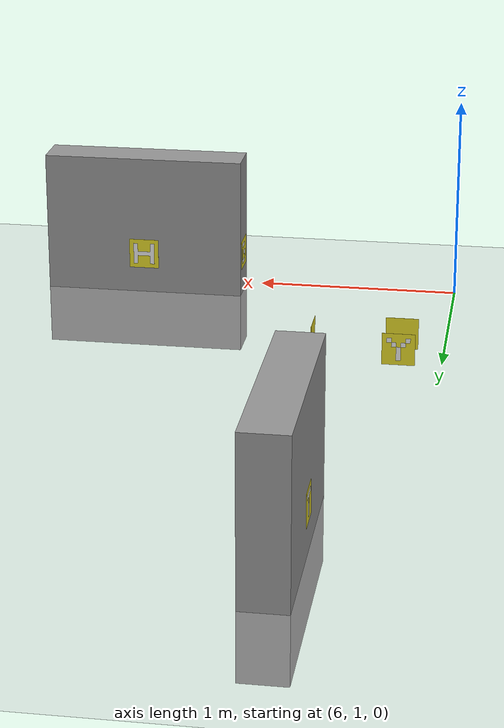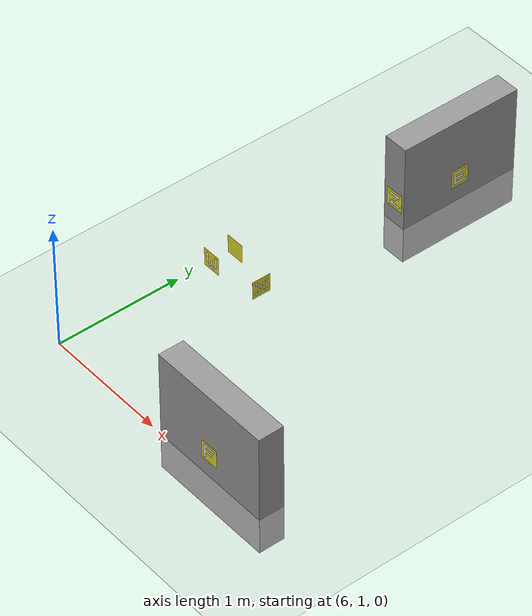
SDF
<sdf version="1.6">
 <world name="default">
  <model name="ground_plane">
   <static>1</static>
   <link name="link">
    <collision name="collision">
     <geometry><plane><normal>0 0 1</normal><size>100 100</size></plane></geometry>
     <surface><friction><ode><mu>100</mu><mu2>50</mu2></ode></friction></surface>
    </collision>
    <visual name="visual">
     <cast_shadows>0</cast_shadows>
     <geometry><plane><normal>0 0 1</normal><size>100 100</size></plane></geometry>
     <material>
      <script><uri>file://media/materials/scripts/gazebo.material</uri><name>Gazebo/Gray</name></script>
     </material>
    </visual>
   </link>
  </model>
  <model name="Untitled1_clone">
   <pose>6.48 3.98 0 0 -0 0</pose>
   <link name="Wall_0">
    <collision name="Wall_0_Collision">
     <geometry><box><size>1 0.2 1</size></box></geometry>
     <pose>0 0 0.2 0 -0 0</pose>
    </collision>
    <visual name="Wall_0_Visual">
     <pose>0 0 0.2 0 -0 0</pose>
     <geometry><box><size>1 0.2 1</size></box></geometry>
     <material>
      <script><uri>file://media/materials/scripts/gazebo.material</uri><name>Gazebo/Gray</name></script>
      <ambient>1 1 1 1</ambient>
     </material>
     <meta><layer>0</layer></meta>
    </visual>
    <pose>0 0 0 0 -0 1.5708</pose>
   </link>
   <static>1</static>
  </model>
  <model name="Untitled1_clone_0_clone">
   <pose>7.58 1.1 0 0 0 -1.5708</pose>
   <link name="Wall_0">
    <collision name="Wall_0_Collision">
     <geometry><box><size>1 0.2 1</size></box></geometry>
     <pose>0 0 0.2 0 -0 0</pose>
    </collision>
    <visual name="Wall_0_Visual">
     <pose>0 0 0.2 0 -0 0</pose>
     <geometry><box><size>1 0.2 1</size></box></geometry>
     <material>
      <script><uri>file://media/materials/scripts/gazebo.material</uri><name>Gazebo/Gray</name></script>
      <ambient>1 1 1 1</ambient>
     </material>
     <meta><layer>0</layer></meta>
    </visual>
    <pose>0 0 0 0 -0 1.5708</pose>
   </link>
   <static>1</static>
  </model>
  <model name="labal_F">
   <link name="base">
    <inertial>
     <pose>-0.001086 -0.000137 -0.001593 0 -0 0</pose>
     <mass>0.0137688</mass>
     <inertia>
      <ixx>2.44128e-05</ixx>
      <ixy>-9.16282e-09</ixy>
      <ixz>4.39336e-07</ixz>
      <iyy>2.60674e-05</iyy>
      <iyz>-1.55543e-08</iyz>
      <izz>4.38445e-05</izz>
     </inertia>
    </inertial>
    <collision name="base_collision">
     <geometry>
      <mesh><scale>1 1 1</scale><uri>/home/tdt/catkin_ws/src/RoboRTS/small_car/meshes/base.STL</uri></mesh>
     </geometry>
    </collision>
    <collision name="base_fixed_joint_lump__labal_F_collision_1">
     <pose>0 0 0 1.5708 -0 0</pose>
     <geometry>
      <mesh><scale>1 1 1</scale><uri>/home/tdt/catkin_ws/src/RoboRTS/small_car/meshes/labal_F.STL</uri></mesh>
     </geometry>
    </collision>
    <visual name="base_visual">
     <geometry>
      <mesh><scale>1 1 1</scale><uri>/home/tdt/catkin_ws/src/RoboRTS/small_car/meshes/base.STL</uri></mesh>
     </geometry>
     <material>
      <script><name>Gazebo/Yellow</name><uri>file://media/materials/scripts/gazebo.material</uri></script>
     </material>
    </visual>
    <visual name="base_fixed_joint_lump__labal_F_visual_1">
     <pose>0 0 0 1.5708 -0 0</pose>
     <geometry>
      <mesh><scale>1 1 1</scale><uri>/home/tdt/catkin_ws/src/RoboRTS/small_car/meshes/labal_F.STL</uri></mesh>
     </geometry>
     <material>
      <script><name>Gazebo/White</name><uri>file://media/materials/scripts/gazebo.material</uri></script>
     </material>
    </visual>
   </link>
   <pose>7.58 1 0.2 0 -0 0</pose>
   <static>1</static>
  </model>
  <model name="labal_G">
   <link name="base">
    <inertial>
     <pose>-0.001086 -0.000137 -0.001593 0 -0 0</pose>
     <mass>0.0137688</mass>
     <inertia>
      <ixx>2.44128e-05</ixx>
      <ixy>-9.16282e-09</ixy>
      <ixz>4.39336e-07</ixz>
      <iyy>2.60674e-05</iyy>
      <iyz>-1.55543e-08</iyz>
      <izz>4.38445e-05</izz>
     </inertia>
    </inertial>
    <collision name="base_collision">
     <geometry>
      <mesh><scale>1 1 1</scale><uri>/home/tdt/catkin_ws/src/RoboRTS/small_car/meshes/base.STL</uri></mesh>
     </geometry>
    </collision>
    <collision name="base_fixed_joint_lump__labal_G_collision_1">
     <pose>0 0 0 1.5708 -0 0</pose>
     <geometry>
      <mesh><scale>1 1 1</scale><uri>/home/tdt/catkin_ws/src/RoboRTS/small_car/meshes/labal_G.STL</uri></mesh>
     </geometry>
    </collision>
    <visual name="base_visual">
     <geometry>
      <mesh><scale>1 1 1</scale><uri>/home/tdt/catkin_ws/src/RoboRTS/small_car/meshes/base.STL</uri></mesh>
     </geometry>
     <material>
      <script><name>Gazebo/Yellow</name><uri>file://media/materials/scripts/gazebo.material</uri></script>
     </material>
    </visual>
    <visual name="base_fixed_joint_lump__labal_G_visual_1">
     <pose>0 0 0 1.5708 -0 0</pose>
     <geometry>
      <mesh><scale>1 1 1</scale><uri>/home/tdt/catkin_ws/src/RoboRTS/small_car/meshes/labal_G.STL</uri></mesh>
     </geometry>
     <material>
      <script><name>Gazebo/White</name><uri>file://media/materials/scripts/gazebo.material</uri></script>
     </material>
    </visual>
   </link>
   <pose>7.08 1.1 0.2 0 0 -1.57</pose>
   <static>1</static>
  </model>
  <model name="labal_H">
   <link name="base">
    <inertial>
     <pose>-0.001086 -0.000137 -0.001593 0 -0 0</pose>
     <mass>0.0137688</mass>
     <inertia>
      <ixx>2.44128e-05</ixx>
      <ixy>-9.16282e-09</ixy>
      <ixz>4.39336e-07</ixz>
      <iyy>2.60674e-05</iyy>
      <iyz>-1.55543e-08</iyz>
      <izz>4.38445e-05</izz>
     </inertia>
    </inertial>
    <collision name="base_collision">
     <geometry>
      <mesh><scale>1 1 1</scale><uri>/home/tdt/catkin_ws/src/RoboRTS/small_car/meshes/base.STL</uri></mesh>
     </geometry>
    </collision>
    <collision name="base_fixed_joint_lump__labal_H_collision_1">
     <pose>0 0 0 1.5708 -0 0</pose>
     <geometry>
      <mesh><scale>1 1 1</scale><uri>/home/tdt/catkin_ws/src/RoboRTS/small_car/meshes/labal_H.STL</uri></mesh>
     </geometry>
    </collision>
    <visual name="base_visual">
     <geometry>
      <mesh><scale>1 1 1</scale><uri>/home/tdt/catkin_ws/src/RoboRTS/small_car/meshes/base.STL</uri></mesh>
     </geometry>
     <material>
      <script><name>Gazebo/Yellow</name><uri>file://media/materials/scripts/gazebo.material</uri></script>
     </material>
    </visual>
    <visual name="base_fixed_joint_lump__labal_H_visual_1">
     <pose>0 0 0 1.5708 -0 0</pose>
     <geometry>
      <mesh><scale>1 1 1</scale><uri>/home/tdt/catkin_ws/src/RoboRTS/small_car/meshes/labal_H.STL</uri></mesh>
     </geometry>
     <material>
      <script><name>Gazebo/White</name><uri>file://media/materials/scripts/gazebo.material</uri></script>
     </material>
    </visual>
   </link>
   <pose>7.58 1.2 0.2 0 -0 3.14</pose>
   <static>1</static>
  </model>
  <model name="labal_W">
   <link name="base">
    <inertial>
     <pose>-0.001086 -0.000137 -0.001593 0 -0 0</pose>
     <mass>0.0137688</mass>
     <inertia>
      <ixx>2.44128e-05</ixx>
      <ixy>-9.16282e-09</ixy>
      <ixz>4.39336e-07</ixz>
      <iyy>2.60674e-05</iyy>
      <iyz>-1.55543e-08</iyz>
      <izz>4.38445e-05</izz>
     </inertia>
    </inertial>
    <collision name="base_collision">
     <geometry>
      <mesh><scale>1 1 1</scale><uri>/home/tdt/catkin_ws/src/RoboRTS/small_car/meshes/base.STL</uri></mesh>
     </geometry>
    </collision>
    <collision name="base_fixed_joint_lump__labal_W_collision_1">
     <pose>0 0 0 1.5708 -0 0</pose>
     <geometry>
      <mesh><scale>1 1 1</scale><uri>/home/tdt/catkin_ws/src/RoboRTS/small_car/meshes/labal_W.STL</uri></mesh>
     </geometry>
    </collision>
    <visual name="base_visual">
     <geometry>
      <mesh><scale>1 1 1</scale><uri>/home/tdt/catkin_ws/src/RoboRTS/small_car/meshes/base.STL</uri></mesh>
     </geometry>
     <material>
      <script><name>Gazebo/Yellow</name><uri>file://media/materials/scripts/gazebo.material</uri></script>
     </material>
    </visual>
    <visual name="base_fixed_joint_lump__labal_W_visual_1">
     <pose>0 0 0 1.5708 -0 0</pose>
     <geometry>
      <mesh><scale>1 1 1</scale><uri>/home/tdt/catkin_ws/src/RoboRTS/small_car/meshes/labal_W.STL</uri></mesh>
     </geometry>
     <material>
      <script><name>Gazebo/White</name><uri>file://media/materials/scripts/gazebo.material</uri></script>
     </material>
    </visual>
   </link>
   <pose>6.18 2.14 0.2 0 -0 0</pose>
   <static>1</static>
  </model>
  <model name="labal_X">
   <link name="base">
    <inertial>
     <pose>-0.001086 -0.000137 -0.001593 0 -0 0</pose>
     <mass>0.0137688</mass>
     <inertia>
      <ixx>2.44128e-05</ixx>
      <ixy>-9.16282e-09</ixy>
      <ixz>4.39336e-07</ixz>
      <iyy>2.60674e-05</iyy>
      <iyz>-1.55543e-08</iyz>
      <izz>4.38445e-05</izz>
     </inertia>
    </inertial>
    <collision name="base_collision">
     <geometry>
      <mesh><scale>1 1 1</scale><uri>/home/tdt/catkin_ws/src/RoboRTS/small_car/meshes/base.STL</uri></mesh>
     </geometry>
    </collision>
    <collision name="base_fixed_joint_lump__labal_X_collision_1">
     <pose>0 0 0 1.5708 -0 0</pose>
     <geometry>
      <mesh><scale>1 1 1</scale><uri>/home/tdt/catkin_ws/src/RoboRTS/small_car/meshes/labal_X.STL</uri></mesh>
     </geometry>
    </collision>
    <visual name="base_visual">
     <geometry>
      <mesh><scale>1 1 1</scale><uri>/home/tdt/catkin_ws/src/RoboRTS/small_car/meshes/base.STL</uri></mesh>
     </geometry>
     <material>
      <script><name>Gazebo/Yellow</name><uri>file://media/materials/scripts/gazebo.material</uri></script>
     </material>
    </visual>
    <visual name="base_fixed_joint_lump__labal_X_visual_1">
     <pose>0 0 0 1.5708 -0 0</pose>
     <geometry>
      <mesh><scale>1 1 1</scale><uri>/home/tdt/catkin_ws/src/RoboRTS/small_car/meshes/labal_X.STL</uri></mesh>
     </geometry>
     <material>
      <script><name>Gazebo/White</name><uri>file://media/materials/scripts/gazebo.material</uri></script>
     </material>
    </visual>
   </link>
   <pose>6.58 2.24 0.2 0 -0 1.57</pose>
   <static>1</static>
  </model>
  <model name="labal_Y">
   <link name="base">
    <inertial>
     <pose>-0.001086 -0.000137 -0.001593 0 -0 0</pose>
     <mass>0.0137688</mass>
     <inertia>
      <ixx>2.44128e-05</ixx>
      <ixy>-9.16282e-09</ixy>
      <ixz>4.39336e-07</ixz>
      <iyy>2.60674e-05</iyy>
      <iyz>-1.55543e-08</iyz>
      <izz>4.38445e-05</izz>
     </inertia>
    </inertial>
    <collision name="base_collision">
     <geometry>
      <mesh><scale>1 1 1</scale><uri>/home/tdt/catkin_ws/src/RoboRTS/small_car/meshes/base.STL</uri></mesh>
     </geometry>
    </collision>
    <collision name="base_fixed_joint_lump__labal_Y_collision_1">
     <pose>0 0 0 1.5708 -0 0</pose>
     <geometry>
      <mesh><scale>1 1 1</scale><uri>/home/tdt/catkin_ws/src/RoboRTS/small_car/meshes/labal_Y.STL</uri></mesh>
     </geometry>
    </collision>
    <visual name="base_visual">
     <geometry>
      <mesh><scale>1 1 1</scale><uri>/home/tdt/catkin_ws/src/RoboRTS/small_car/meshes/base.STL</uri></mesh>
     </geometry>
     <material>
      <script><name>Gazebo/Yellow</name><uri>file://media/materials/scripts/gazebo.material</uri></script>
     </material>
    </visual>
    <visual name="base_fixed_joint_lump__labal_Y_visual_1">
     <pose>0 0 0 1.5708 -0 0</pose>
     <geometry>
      <mesh><scale>1 1 1</scale><uri>/home/tdt/catkin_ws/src/RoboRTS/small_car/meshes/labal_Y.STL</uri></mesh>
     </geometry>
     <material>
      <script><name>Gazebo/White</name><uri>file://media/materials/scripts/gazebo.material</uri></script>
     </material>
    </visual>
   </link>
   <pose>6.18 2.34 0.2 0 -0 3.14</pose>
   <static>1</static>
  </model>
  <model name="labal_T">
   <link name="base">
    <inertial>
     <pose>-0.001086 -0.000137 -0.001593 0 -0 0</pose>
     <mass>0.0137688</mass>
     <inertia>
      <ixx>2.44128e-05</ixx>
      <ixy>-9.16282e-09</ixy>
      <ixz>4.39336e-07</ixz>
      <iyy>2.60674e-05</iyy>
      <iyz>-1.55543e-08</iyz>
      <izz>4.38445e-05</izz>
     </inertia>
    </inertial>
    <collision name="base_collision">
     <geometry>
      <mesh><scale>1 1 1</scale><uri>/home/tdt/catkin_ws/src/RoboRTS/small_car/meshes/base.STL</uri></mesh>
     </geometry>
    </collision>
    <collision name="base_fixed_joint_lump__labal_T_collision_1">
     <pose>0 0 0 1.5708 -0 0</pose>
     <geometry>
      <mesh><scale>1 1 1</scale><uri>/home/tdt/catkin_ws/src/RoboRTS/small_car/meshes/labal_T.STL</uri></mesh>
     </geometry>
    </collision>
    <visual name="base_visual">
     <geometry>
      <mesh><scale>1 1 1</scale><uri>/home/tdt/catkin_ws/src/RoboRTS/small_car/meshes/base.STL</uri></mesh>
     </geometry>
     <material>
      <script><name>Gazebo/Yellow</name><uri>file://media/materials/scripts/gazebo.material</uri></script>
     </material>
    </visual>
    <visual name="base_fixed_joint_lump__labal_T_visual_1">
     <pose>0 0 0 1.5708 -0 0</pose>
     <geometry>
      <mesh><scale>1 1 1</scale><uri>/home/tdt/catkin_ws/src/RoboRTS/small_car/meshes/labal_T.STL</uri></mesh>
     </geometry>
     <material>
      <script><name>Gazebo/White</name><uri>file://media/materials/scripts/gazebo.material</uri></script>
     </material>
    </visual>
   </link>
   <pose>6.38 3.98 0.2 0 0 -1.57</pose>
   <static>1</static>
  </model>
  <model name="labal_Z">
   <link name="base">
    <inertial>
     <pose>-0.001086 -0.000137 -0.001593 0 -0 0</pose>
     <mass>0.0137688</mass>
     <inertia>
      <ixx>2.44128e-05</ixx>
      <ixy>-9.16282e-09</ixy>
      <ixz>4.39336e-07</ixz>
      <iyy>2.60674e-05</iyy>
      <iyz>-1.55543e-08</iyz>
      <izz>4.38445e-05</izz>
     </inertia>
    </inertial>
    <collision name="base_collision">
     <geometry>
      <mesh><scale>1 1 1</scale><uri>/home/tdt/catkin_ws/src/RoboRTS/small_car/meshes/base.STL</uri></mesh>
     </geometry>
    </collision>
    <collision name="base_fixed_joint_lump__labal_Z_collision_1">
     <pose>0 0 0 1.5708 -0 0</pose>
     <geometry>
      <mesh><scale>1 1 1</scale><uri>/home/tdt/catkin_ws/src/RoboRTS/small_car/meshes/labal_Z.STL</uri></mesh>
     </geometry>
    </collision>
    <visual name="base_visual">
     <geometry>
      <mesh><scale>1 1 1</scale><uri>/home/tdt/catkin_ws/src/RoboRTS/small_car/meshes/base.STL</uri></mesh>
     </geometry>
     <material>
      <script><name>Gazebo/Yellow</name><uri>file://media/materials/scripts/gazebo.material</uri></script>
     </material>
    </visual>
    <visual name="base_fixed_joint_lump__labal_Z_visual_1">
     <pose>0 0 0 1.5708 -0 0</pose>
     <geometry>
      <mesh><scale>1 1 1</scale><uri>/home/tdt/catkin_ws/src/RoboRTS/small_car/meshes/labal_Z.STL</uri></mesh>
     </geometry>
     <material>
      <script><name>Gazebo/White</name><uri>file://media/materials/scripts/gazebo.material</uri></script>
     </material>
    </visual>
   </link>
   <pose>6.48 3.48 0.2 0 -0 0</pose>
   <static>1</static>
  </model>
  <model name="labal_E">
   <link name="base">
    <inertial>
     <pose>-0.001086 -0.000137 -0.001593 0 -0 0</pose>
     <mass>0.0137688</mass>
     <inertia>
      <ixx>2.44128e-05</ixx>
      <ixy>-9.16282e-09</ixy>
      <ixz>4.39336e-07</ixz>
      <iyy>2.60674e-05</iyy>
      <iyz>-1.55543e-08</iyz>
      <izz>4.38445e-05</izz>
     </inertia>
    </inertial>
    <collision name="base_collision">
     <geometry>
      <mesh><scale>1 1 1</scale><uri>/home/tdt/catkin_ws/src/RoboRTS/small_car/meshes/base.STL</uri></mesh>
     </geometry>
    </collision>
    <collision name="base_fixed_joint_lump__labal_E_collision_1">
     <pose>0 0 0 1.5708 -0 0</pose>
     <geometry>
      <mesh><scale>1 1 1</scale><uri>/home/tdt/catkin_ws/src/RoboRTS/small_car/meshes/labal_E.STL</uri></mesh>
     </geometry>
    </collision>
    <visual name="base_visual">
     <geometry>
      <mesh><scale>1 1 1</scale><uri>/home/tdt/catkin_ws/src/RoboRTS/small_car/meshes/base.STL</uri></mesh>
     </geometry>
     <material>
      <script><name>Gazebo/Yellow</name><uri>file://media/materials/scripts/gazebo.material</uri></script>
     </material>
    </visual>
    <visual name="base_fixed_joint_lump__labal_E_visual_1">
     <pose>0 0 0 1.5708 -0 0</pose>
     <geometry>
      <mesh><scale>1 1 1</scale><uri>/home/tdt/catkin_ws/src/RoboRTS/small_car/meshes/labal_E.STL</uri></mesh>
     </geometry>
     <material>
      <script><name>Gazebo/White</name><uri>file://media/materials/scripts/gazebo.material</uri></script>
     </material>
    </visual>
   </link>
   <pose>6.58 3.98 0.2 0 -0 1.57</pose>
   <static>1</static>
  </model>
 </world>
</sdf>
